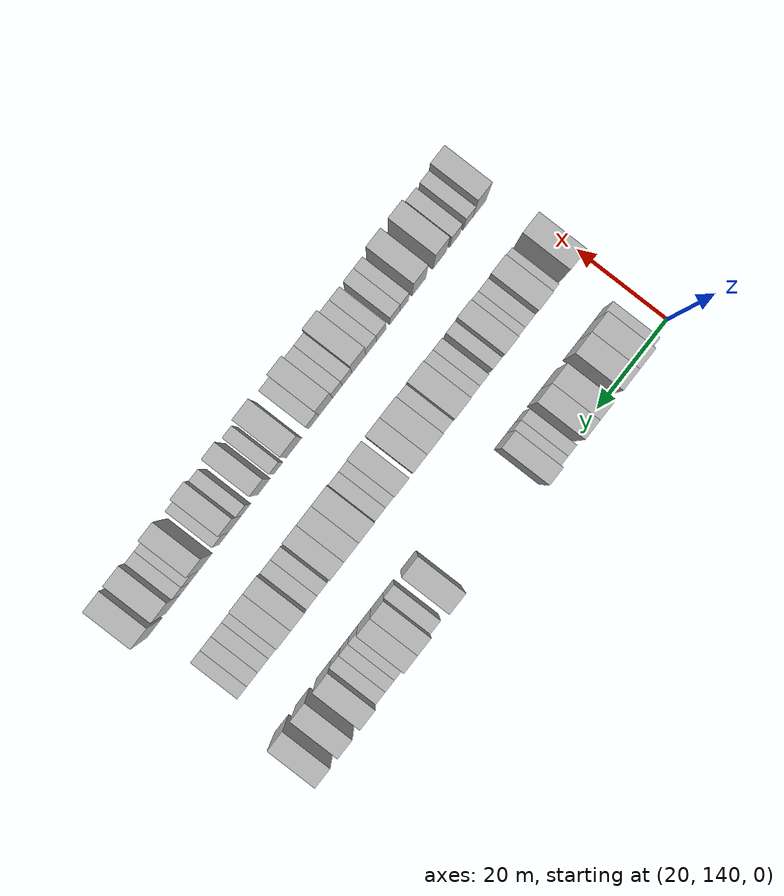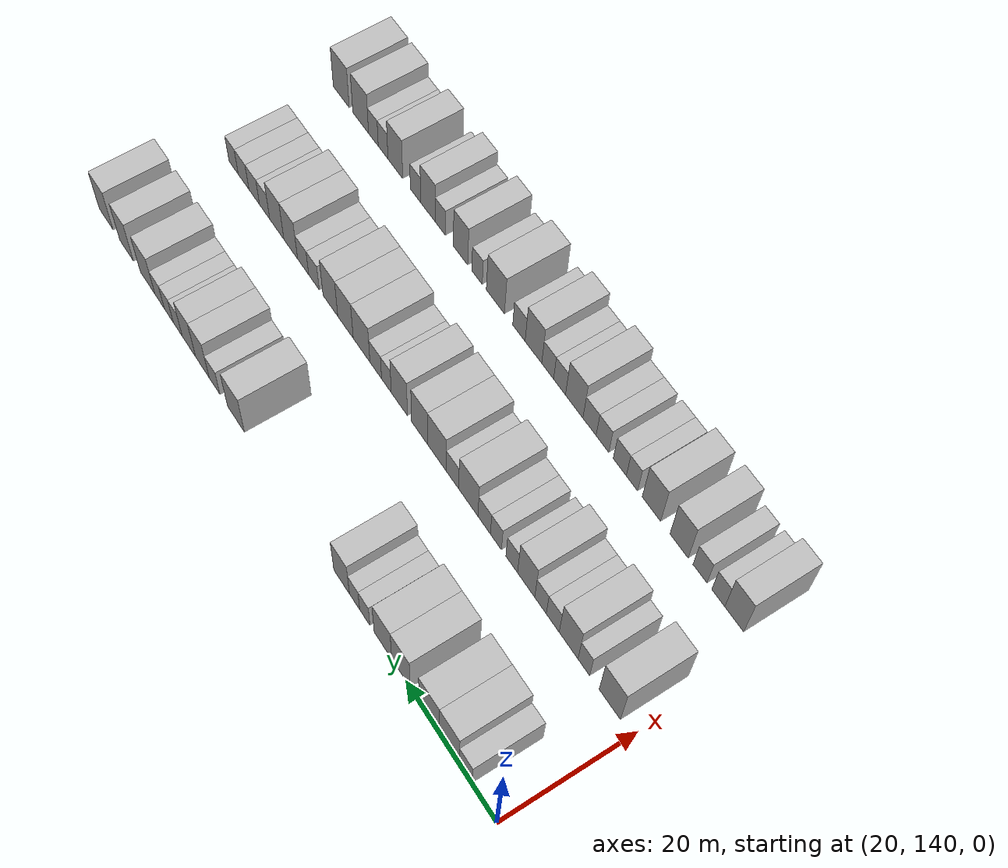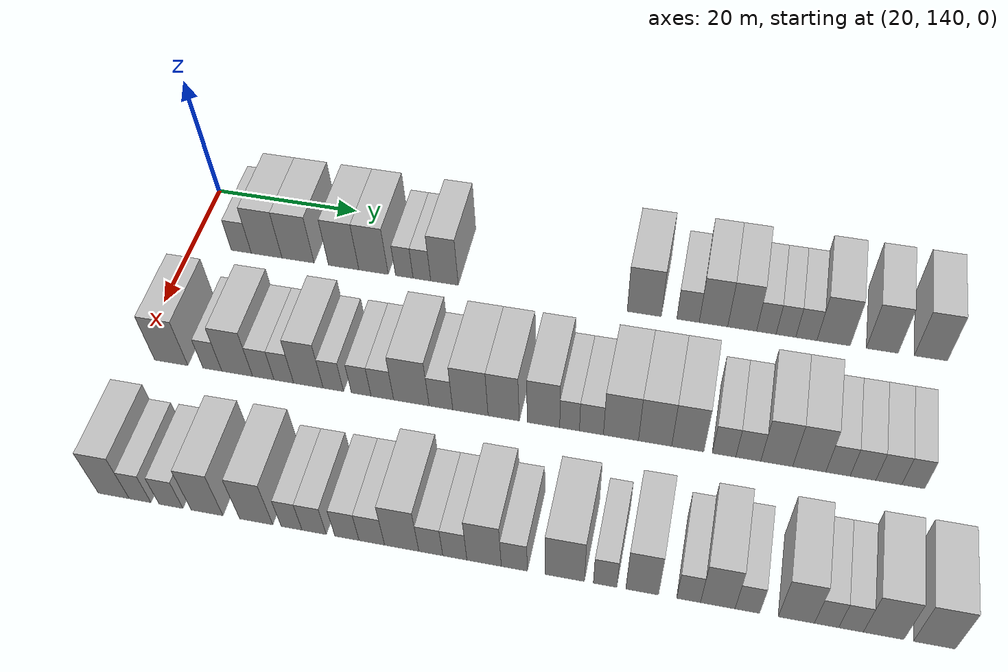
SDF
<sdf version="1.6">
 <world name="default">
  <model name="building_97">
   <static>1</static>
   <pose>25.0000 146.8412 0 0.000000 0.000000 0.000000</pose>
   <link name="link">
    <pose>0 0 3.00 0 0 0</pose>
    <collision name="collision"><geometry><box><size>10.0000 2.8325 6.0000</size></box></geometry></collision>
    <visual name="visual">
     <cast_shadows>0</cast_shadows>
     <geometry><box><size>10.0000 2.8325 6.0000</size></box></geometry>
     <material>
      <script>
       <uri>model://HANNAS_wall/materials/scripts</uri>
       <uri>model://HANNAS_wall/materials/textures</uri>
       <name>vrc/HANNAS_wall</name>
      </script>
     </material>
    </visual>
   </link>
  </model>
  <model name="building_98">
   <static>1</static>
   <pose>25.0000 150.4132 0 0.000000 0.000000 0.000000</pose>
   <link name="link">
    <pose>0 0 4.50 0 0 0</pose>
    <collision name="collision"><geometry><box><size>10.0000 4.3115 9.0000</size></box></geometry></collision>
    <visual name="visual">
     <cast_shadows>0</cast_shadows>
     <geometry><box><size>10.0000 4.3115 9.0000</size></box></geometry>
     <material>
      <script>
       <uri>model://HANNAS_wall/materials/scripts</uri>
       <uri>model://HANNAS_wall/materials/textures</uri>
       <name>vrc/HANNAS_wall</name>
      </script>
     </material>
    </visual>
   </link>
  </model>
  <model name="building_99">
   <static>1</static>
   <pose>25.0000 154.8145 0 0.000000 0.000000 0.000000</pose>
   <link name="link">
    <pose>0 0 4.50 0 0 0</pose>
    <collision name="collision"><geometry><box><size>10.0000 4.4910 9.0000</size></box></geometry></collision>
    <visual name="visual">
     <cast_shadows>0</cast_shadows>
     <geometry><box><size>10.0000 4.4910 9.0000</size></box></geometry>
     <material>
      <script>
       <uri>model://HANNAS_wall/materials/scripts</uri>
       <uri>model://HANNAS_wall/materials/textures</uri>
       <name>vrc/HANNAS_wall</name>
      </script>
     </material>
    </visual>
   </link>
  </model>
  <model name="building_100">
   <static>1</static>
   <pose>25.0000 161.1610 0 0.000000 0.000000 0.000000</pose>
   <link name="link">
    <pose>0 0 4.50 0 0 0</pose>
    <collision name="collision"><geometry><box><size>10.0000 4.2021 9.0000</size></box></geometry></collision>
    <visual name="visual">
     <cast_shadows>0</cast_shadows>
     <geometry><box><size>10.0000 4.2021 9.0000</size></box></geometry>
     <material>
      <script>
       <uri>model://HANNAS_wall/materials/scripts</uri>
       <uri>model://HANNAS_wall/materials/textures</uri>
       <name>vrc/HANNAS_wall</name>
      </script>
     </material>
    </visual>
   </link>
  </model>
  <model name="building_101">
   <static>1</static>
   <pose>25.0000 165.2833 0 0.000000 0.000000 0.000000</pose>
   <link name="link">
    <pose>0 0 4.50 0 0 0</pose>
    <collision name="collision"><geometry><box><size>10.0000 4.0424 9.0000</size></box></geometry></collision>
    <visual name="visual">
     <cast_shadows>0</cast_shadows>
     <geometry><box><size>10.0000 4.0424 9.0000</size></box></geometry>
     <material>
      <script>
       <uri>model://HANNAS_wall/materials/scripts</uri>
       <uri>model://HANNAS_wall/materials/textures</uri>
       <name>vrc/HANNAS_wall</name>
      </script>
     </material>
    </visual>
   </link>
  </model>
  <model name="building_102">
   <static>1</static>
   <pose>25.0000 169.5052 0 0.000000 0.000000 0.000000</pose>
   <link name="link">
    <pose>0 0 3.00 0 0 0</pose>
    <collision name="collision"><geometry><box><size>10.0000 2.4013 6.0000</size></box></geometry></collision>
    <visual name="visual">
     <cast_shadows>0</cast_shadows>
     <geometry><box><size>10.0000 2.4013 6.0000</size></box></geometry>
     <material>
      <script>
       <uri>model://HANNAS_wall/materials/scripts</uri>
       <uri>model://HANNAS_wall/materials/textures</uri>
       <name>vrc/HANNAS_wall</name>
      </script>
     </material>
    </visual>
   </link>
  </model>
  <model name="building_103">
   <static>1</static>
   <pose>25.0000 171.9071 0 0.000000 0.000000 0.000000</pose>
   <link name="link">
    <pose>0 0 3.00 0 0 0</pose>
    <collision name="collision"><geometry><box><size>10.0000 2.4025 6.0000</size></box></geometry></collision>
    <visual name="visual">
     <cast_shadows>0</cast_shadows>
     <geometry><box><size>10.0000 2.4025 6.0000</size></box></geometry>
     <material>
      <script>
       <uri>model://HANNAS_wall/materials/scripts</uri>
       <uri>model://HANNAS_wall/materials/textures</uri>
       <name>vrc/HANNAS_wall</name>
      </script>
     </material>
    </visual>
   </link>
  </model>
  <model name="building_104">
   <static>1</static>
   <pose>25.0000 174.9782 0 0.000000 0.000000 0.000000</pose>
   <link name="link">
    <pose>0 0 4.50 0 0 0</pose>
    <collision name="collision"><geometry><box><size>10.0000 3.7398 9.0000</size></box></geometry></collision>
    <visual name="visual">
     <cast_shadows>0</cast_shadows>
     <geometry><box><size>10.0000 3.7398 9.0000</size></box></geometry>
     <material>
      <script>
       <uri>model://HANNAS_wall/materials/scripts</uri>
       <uri>model://HANNAS_wall/materials/textures</uri>
       <name>vrc/HANNAS_wall</name>
      </script>
     </material>
    </visual>
   </link>
  </model>
  <model name="building_105">
   <static>1</static>
   <pose>25.0000 201.5291 0 0.000000 0.000000 0.000000</pose>
   <link name="link">
    <pose>0 0 4.50 0 0 0</pose>
    <collision name="collision"><geometry><box><size>10.0000 4.4540 9.0000</size></box></geometry></collision>
    <visual name="visual">
     <cast_shadows>0</cast_shadows>
     <geometry><box><size>10.0000 4.4540 9.0000</size></box></geometry>
     <material>
      <script>
       <uri>model://HANNAS_wall/materials/scripts</uri>
       <uri>model://HANNAS_wall/materials/textures</uri>
       <name>vrc/HANNAS_wall</name>
      </script>
     </material>
    </visual>
   </link>
  </model>
  <model name="building_106">
   <static>1</static>
   <pose>25.0000 207.2030 0 0.000000 0.000000 0.000000</pose>
   <link name="link">
    <pose>0 0 3.00 0 0 0</pose>
    <collision name="collision"><geometry><box><size>10.0000 2.8937 6.0000</size></box></geometry></collision>
    <visual name="visual">
     <cast_shadows>0</cast_shadows>
     <geometry><box><size>10.0000 2.8937 6.0000</size></box></geometry>
     <material>
      <script>
       <uri>model://HANNAS_wall/materials/scripts</uri>
       <uri>model://HANNAS_wall/materials/textures</uri>
       <name>vrc/HANNAS_wall</name>
      </script>
     </material>
    </visual>
   </link>
  </model>
  <model name="building_107">
   <static>1</static>
   <pose>25.0000 210.4806 0 0.000000 0.000000 0.000000</pose>
   <link name="link">
    <pose>0 0 4.50 0 0 0</pose>
    <collision name="collision"><geometry><box><size>10.0000 3.6615 9.0000</size></box></geometry></collision>
    <visual name="visual">
     <cast_shadows>0</cast_shadows>
     <geometry><box><size>10.0000 3.6615 9.0000</size></box></geometry>
     <material>
      <script>
       <uri>model://HANNAS_wall/materials/scripts</uri>
       <uri>model://HANNAS_wall/materials/textures</uri>
       <name>vrc/HANNAS_wall</name>
      </script>
     </material>
    </visual>
   </link>
  </model>
  <model name="building_108">
   <static>1</static>
   <pose>25.0000 214.1568 0 0.000000 0.000000 0.000000</pose>
   <link name="link">
    <pose>0 0 4.50 0 0 0</pose>
    <collision name="collision"><geometry><box><size>10.0000 3.6910 9.0000</size></box></geometry></collision>
    <visual name="visual">
     <cast_shadows>0</cast_shadows>
     <geometry><box><size>10.0000 3.6910 9.0000</size></box></geometry>
     <material>
      <script>
       <uri>model://HANNAS_wall/materials/scripts</uri>
       <uri>model://HANNAS_wall/materials/textures</uri>
       <name>vrc/HANNAS_wall</name>
      </script>
     </material>
    </visual>
   </link>
  </model>
  <model name="building_109">
   <static>1</static>
   <pose>25.0000 217.2474 0 0.000000 0.000000 0.000000</pose>
   <link name="link">
    <pose>0 0 3.00 0 0 0</pose>
    <collision name="collision"><geometry><box><size>10.0000 2.4903 6.0000</size></box></geometry></collision>
    <visual name="visual">
     <cast_shadows>0</cast_shadows>
     <geometry><box><size>10.0000 2.4903 6.0000</size></box></geometry>
     <material>
      <script>
       <uri>model://HANNAS_wall/materials/scripts</uri>
       <uri>model://HANNAS_wall/materials/textures</uri>
       <name>vrc/HANNAS_wall</name>
      </script>
     </material>
    </visual>
   </link>
  </model>
  <model name="building_110">
   <static>1</static>
   <pose>25.0000 219.7412 0 0.000000 0.000000 0.000000</pose>
   <link name="link">
    <pose>0 0 3.00 0 0 0</pose>
    <collision name="collision"><geometry><box><size>10.0000 2.4972 6.0000</size></box></geometry></collision>
    <visual name="visual">
     <cast_shadows>0</cast_shadows>
     <geometry><box><size>10.0000 2.4972 6.0000</size></box></geometry>
     <material>
      <script>
       <uri>model://HANNAS_wall/materials/scripts</uri>
       <uri>model://HANNAS_wall/materials/textures</uri>
       <name>vrc/HANNAS_wall</name>
      </script>
     </material>
    </visual>
   </link>
  </model>
  <model name="building_111">
   <static>1</static>
   <pose>25.0000 222.3231 0 0.000000 0.000000 0.000000</pose>
   <link name="link">
    <pose>0 0 3.00 0 0 0</pose>
    <collision name="collision"><geometry><box><size>10.0000 2.6667 6.0000</size></box></geometry></collision>
    <visual name="visual">
     <cast_shadows>0</cast_shadows>
     <geometry><box><size>10.0000 2.6667 6.0000</size></box></geometry>
     <material>
      <script>
       <uri>model://HANNAS_wall/materials/scripts</uri>
       <uri>model://HANNAS_wall/materials/textures</uri>
       <name>vrc/HANNAS_wall</name>
      </script>
     </material>
    </visual>
   </link>
  </model>
  <model name="building_112">
   <static>1</static>
   <pose>25.0000 225.7544 0 0.000000 0.000000 0.000000</pose>
   <link name="link">
    <pose>0 0 4.50 0 0 0</pose>
    <collision name="collision"><geometry><box><size>10.0000 4.1959 9.0000</size></box></geometry></collision>
    <visual name="visual">
     <cast_shadows>0</cast_shadows>
     <geometry><box><size>10.0000 4.1959 9.0000</size></box></geometry>
     <material>
      <script>
       <uri>model://HANNAS_wall/materials/scripts</uri>
       <uri>model://HANNAS_wall/materials/textures</uri>
       <name>vrc/HANNAS_wall</name>
      </script>
     </material>
    </visual>
   </link>
  </model>
  <model name="building_113">
   <static>1</static>
   <pose>25.0000 231.8361 0 0.000000 0.000000 0.000000</pose>
   <link name="link">
    <pose>0 0 4.50 0 0 0</pose>
    <collision name="collision"><geometry><box><size>10.0000 3.9677 9.0000</size></box></geometry></collision>
    <visual name="visual">
     <cast_shadows>0</cast_shadows>
     <geometry><box><size>10.0000 3.9677 9.0000</size></box></geometry>
     <material>
      <script>
       <uri>model://HANNAS_wall/materials/scripts</uri>
       <uri>model://HANNAS_wall/materials/textures</uri>
       <name>vrc/HANNAS_wall</name>
      </script>
     </material>
    </visual>
   </link>
  </model>
  <model name="building_114">
   <static>1</static>
   <pose>25.0000 237.8687 0 0.000000 0.000000 0.000000</pose>
   <link name="link">
    <pose>0 0 4.50 0 0 0</pose>
    <collision name="collision"><geometry><box><size>10.0000 4.0975 9.0000</size></box></geometry></collision>
    <visual name="visual">
     <cast_shadows>0</cast_shadows>
     <geometry><box><size>10.0000 4.0975 9.0000</size></box></geometry>
     <material>
      <script>
       <uri>model://HANNAS_wall/materials/scripts</uri>
       <uri>model://HANNAS_wall/materials/textures</uri>
       <name>vrc/HANNAS_wall</name>
      </script>
     </material>
    </visual>
   </link>
  </model>
  <model name="building_207">
   <static>1</static>
   <pose>44.0000 144.5111 0 0.000000 0.000000 0.000000</pose>
   <link name="link">
    <pose>0 0 4.50 0 0 0</pose>
    <collision name="collision"><geometry><box><size>10.0000 4.3973 9.0000</size></box></geometry></collision>
    <visual name="visual">
     <cast_shadows>0</cast_shadows>
     <geometry><box><size>10.0000 4.3973 9.0000</size></box></geometry>
     <material>
      <script>
       <uri>model://HANNAS_wall/materials/scripts</uri>
       <uri>model://HANNAS_wall/materials/textures</uri>
       <name>vrc/HANNAS_wall</name>
      </script>
     </material>
    </visual>
   </link>
  </model>
  <model name="building_208">
   <static>1</static>
   <pose>44.0000 149.9507 0 0.000000 0.000000 0.000000</pose>
   <link name="link">
    <pose>0 0 3.00 0 0 0</pose>
    <collision name="collision"><geometry><box><size>10.0000 2.4818 6.0000</size></box></geometry></collision>
    <visual name="visual">
     <cast_shadows>0</cast_shadows>
     <geometry><box><size>10.0000 2.4818 6.0000</size></box></geometry>
     <material>
      <script>
       <uri>model://HANNAS_wall/materials/scripts</uri>
       <uri>model://HANNAS_wall/materials/textures</uri>
       <name>vrc/HANNAS_wall</name>
      </script>
     </material>
    </visual>
   </link>
  </model>
  <model name="building_209">
   <static>1</static>
   <pose>44.0000 153.2007 0 0.000000 0.000000 0.000000</pose>
   <link name="link">
    <pose>0 0 4.50 0 0 0</pose>
    <collision name="collision"><geometry><box><size>10.0000 4.0182 9.0000</size></box></geometry></collision>
    <visual name="visual">
     <cast_shadows>0</cast_shadows>
     <geometry><box><size>10.0000 4.0182 9.0000</size></box></geometry>
     <material>
      <script>
       <uri>model://HANNAS_wall/materials/scripts</uri>
       <uri>model://HANNAS_wall/materials/textures</uri>
       <name>vrc/HANNAS_wall</name>
      </script>
     </material>
    </visual>
   </link>
  </model>
  <model name="building_210">
   <static>1</static>
   <pose>44.0000 156.6071 0 0.000000 0.000000 0.000000</pose>
   <link name="link">
    <pose>0 0 3.00 0 0 0</pose>
    <collision name="collision"><geometry><box><size>10.0000 2.7946 6.0000</size></box></geometry></collision>
    <visual name="visual">
     <cast_shadows>0</cast_shadows>
     <geometry><box><size>10.0000 2.7946 6.0000</size></box></geometry>
     <material>
      <script>
       <uri>model://HANNAS_wall/materials/scripts</uri>
       <uri>model://HANNAS_wall/materials/textures</uri>
       <name>vrc/HANNAS_wall</name>
      </script>
     </material>
    </visual>
   </link>
  </model>
  <model name="building_211">
   <static>1</static>
   <pose>44.0000 159.2744 0 0.000000 0.000000 0.000000</pose>
   <link name="link">
    <pose>0 0 3.00 0 0 0</pose>
    <collision name="collision"><geometry><box><size>10.0000 2.5400 6.0000</size></box></geometry></collision>
    <visual name="visual">
     <cast_shadows>0</cast_shadows>
     <geometry><box><size>10.0000 2.5400 6.0000</size></box></geometry>
     <material>
      <script>
       <uri>model://HANNAS_wall/materials/scripts</uri>
       <uri>model://HANNAS_wall/materials/textures</uri>
       <name>vrc/HANNAS_wall</name>
      </script>
     </material>
    </visual>
   </link>
  </model>
  <model name="building_212">
   <static>1</static>
   <pose>44.0000 162.4457 0 0.000000 0.000000 0.000000</pose>
   <link name="link">
    <pose>0 0 4.50 0 0 0</pose>
    <collision name="collision"><geometry><box><size>10.0000 3.8026 9.0000</size></box></geometry></collision>
    <visual name="visual">
     <cast_shadows>0</cast_shadows>
     <geometry><box><size>10.0000 3.8026 9.0000</size></box></geometry>
     <material>
      <script>
       <uri>model://HANNAS_wall/materials/scripts</uri>
       <uri>model://HANNAS_wall/materials/textures</uri>
       <name>vrc/HANNAS_wall</name>
      </script>
     </material>
    </visual>
   </link>
  </model>
  <model name="building_213">
   <static>1</static>
   <pose>44.0000 165.6534 0 0.000000 0.000000 0.000000</pose>
   <link name="link">
    <pose>0 0 3.00 0 0 0</pose>
    <collision name="collision"><geometry><box><size>10.0000 2.6128 6.0000</size></box></geometry></collision>
    <visual name="visual">
     <cast_shadows>0</cast_shadows>
     <geometry><box><size>10.0000 2.6128 6.0000</size></box></geometry>
     <material>
      <script>
       <uri>model://HANNAS_wall/materials/scripts</uri>
       <uri>model://HANNAS_wall/materials/textures</uri>
       <name>vrc/HANNAS_wall</name>
      </script>
     </material>
    </visual>
   </link>
  </model>
  <model name="building_214">
   <static>1</static>
   <pose>44.0000 169.2153 0 0.000000 0.000000 0.000000</pose>
   <link name="link">
    <pose>0 0 3.00 0 0 0</pose>
    <collision name="collision"><geometry><box><size>10.0000 2.5110 6.0000</size></box></geometry></collision>
    <visual name="visual">
     <cast_shadows>0</cast_shadows>
     <geometry><box><size>10.0000 2.5110 6.0000</size></box></geometry>
     <material>
      <script>
       <uri>model://HANNAS_wall/materials/scripts</uri>
       <uri>model://HANNAS_wall/materials/textures</uri>
       <name>vrc/HANNAS_wall</name>
      </script>
     </material>
    </visual>
   </link>
  </model>
  <model name="building_215">
   <static>1</static>
   <pose>44.0000 171.9040 0 0.000000 0.000000 0.000000</pose>
   <link name="link">
    <pose>0 0 3.00 0 0 0</pose>
    <collision name="collision"><geometry><box><size>10.0000 2.8663 6.0000</size></box></geometry></collision>
    <visual name="visual">
     <cast_shadows>0</cast_shadows>
     <geometry><box><size>10.0000 2.8663 6.0000</size></box></geometry>
     <material>
      <script>
       <uri>model://HANNAS_wall/materials/scripts</uri>
       <uri>model://HANNAS_wall/materials/textures</uri>
       <name>vrc/HANNAS_wall</name>
      </script>
     </material>
    </visual>
   </link>
  </model>
  <model name="building_216">
   <static>1</static>
   <pose>44.0000 175.5779 0 0.000000 0.000000 0.000000</pose>
   <link name="link">
    <pose>0 0 4.50 0 0 0</pose>
    <collision name="collision"><geometry><box><size>10.0000 4.4815 9.0000</size></box></geometry></collision>
    <visual name="visual">
     <cast_shadows>0</cast_shadows>
     <geometry><box><size>10.0000 4.4815 9.0000</size></box></geometry>
     <material>
      <script>
       <uri>model://HANNAS_wall/materials/scripts</uri>
       <uri>model://HANNAS_wall/materials/textures</uri>
       <name>vrc/HANNAS_wall</name>
      </script>
     </material>
    </visual>
   </link>
  </model>
  <model name="building_217">
   <static>1</static>
   <pose>44.0000 179.3002 0 0.000000 0.000000 0.000000</pose>
   <link name="link">
    <pose>0 0 3.00 0 0 0</pose>
    <collision name="collision"><geometry><box><size>10.0000 2.9632 6.0000</size></box></geometry></collision>
    <visual name="visual">
     <cast_shadows>0</cast_shadows>
     <geometry><box><size>10.0000 2.9632 6.0000</size></box></geometry>
     <material>
      <script>
       <uri>model://HANNAS_wall/materials/scripts</uri>
       <uri>model://HANNAS_wall/materials/textures</uri>
       <name>vrc/HANNAS_wall</name>
      </script>
     </material>
    </visual>
   </link>
  </model>
  <model name="building_218">
   <static>1</static>
   <pose>44.0000 182.9810 0 0.000000 0.000000 0.000000</pose>
   <link name="link">
    <pose>0 0 4.50 0 0 0</pose>
    <collision name="collision"><geometry><box><size>10.0000 4.3983 9.0000</size></box></geometry></collision>
    <visual name="visual">
     <cast_shadows>0</cast_shadows>
     <geometry><box><size>10.0000 4.3983 9.0000</size></box></geometry>
     <material>
      <script>
       <uri>model://HANNAS_wall/materials/scripts</uri>
       <uri>model://HANNAS_wall/materials/textures</uri>
       <name>vrc/HANNAS_wall</name>
      </script>
     </material>
    </visual>
   </link>
  </model>
  <model name="building_219">
   <static>1</static>
   <pose>44.0000 187.1157 0 0.000000 0.000000 0.000000</pose>
   <link name="link">
    <pose>0 0 4.50 0 0 0</pose>
    <collision name="collision"><geometry><box><size>10.0000 3.8711 9.0000</size></box></geometry></collision>
    <visual name="visual">
     <cast_shadows>0</cast_shadows>
     <geometry><box><size>10.0000 3.8711 9.0000</size></box></geometry>
     <material>
      <script>
       <uri>model://HANNAS_wall/materials/scripts</uri>
       <uri>model://HANNAS_wall/materials/textures</uri>
       <name>vrc/HANNAS_wall</name>
      </script>
     </material>
    </visual>
   </link>
  </model>
  <model name="building_220">
   <static>1</static>
   <pose>44.0000 192.0382 0 0.000000 0.000000 0.000000</pose>
   <link name="link">
    <pose>0 0 4.50 0 0 0</pose>
    <collision name="collision"><geometry><box><size>10.0000 3.9739 9.0000</size></box></geometry></collision>
    <visual name="visual">
     <cast_shadows>0</cast_shadows>
     <geometry><box><size>10.0000 3.9739 9.0000</size></box></geometry>
     <material>
      <script>
       <uri>model://HANNAS_wall/materials/scripts</uri>
       <uri>model://HANNAS_wall/materials/textures</uri>
       <name>vrc/HANNAS_wall</name>
      </script>
     </material>
    </visual>
   </link>
  </model>
  <model name="building_221">
   <static>1</static>
   <pose>44.0000 195.2307 0 0.000000 0.000000 0.000000</pose>
   <link name="link">
    <pose>0 0 3.00 0 0 0</pose>
    <collision name="collision"><geometry><box><size>10.0000 2.4112 6.0000</size></box></geometry></collision>
    <visual name="visual">
     <cast_shadows>0</cast_shadows>
     <geometry><box><size>10.0000 2.4112 6.0000</size></box></geometry>
     <material>
      <script>
       <uri>model://HANNAS_wall/materials/scripts</uri>
       <uri>model://HANNAS_wall/materials/textures</uri>
       <name>vrc/HANNAS_wall</name>
      </script>
     </material>
    </visual>
   </link>
  </model>
  <model name="building_222">
   <static>1</static>
   <pose>44.0000 197.8939 0 0.000000 0.000000 0.000000</pose>
   <link name="link">
    <pose>0 0 3.00 0 0 0</pose>
    <collision name="collision"><geometry><box><size>10.0000 2.9153 6.0000</size></box></geometry></collision>
    <visual name="visual">
     <cast_shadows>0</cast_shadows>
     <geometry><box><size>10.0000 2.9153 6.0000</size></box></geometry>
     <material>
      <script>
       <uri>model://HANNAS_wall/materials/scripts</uri>
       <uri>model://HANNAS_wall/materials/textures</uri>
       <name>vrc/HANNAS_wall</name>
      </script>
     </material>
    </visual>
   </link>
  </model>
  <model name="building_223">
   <static>1</static>
   <pose>44.0000 201.4726 0 0.000000 0.000000 0.000000</pose>
   <link name="link">
    <pose>0 0 4.50 0 0 0</pose>
    <collision name="collision"><geometry><box><size>10.0000 4.2420 9.0000</size></box></geometry></collision>
    <visual name="visual">
     <cast_shadows>0</cast_shadows>
     <geometry><box><size>10.0000 4.2420 9.0000</size></box></geometry>
     <material>
      <script>
       <uri>model://HANNAS_wall/materials/scripts</uri>
       <uri>model://HANNAS_wall/materials/textures</uri>
       <name>vrc/HANNAS_wall</name>
      </script>
     </material>
    </visual>
   </link>
  </model>
  <model name="building_224">
   <static>1</static>
   <pose>44.0000 205.5902 0 0.000000 0.000000 0.000000</pose>
   <link name="link">
    <pose>0 0 4.50 0 0 0</pose>
    <collision name="collision"><geometry><box><size>10.0000 3.9932 9.0000</size></box></geometry></collision>
    <visual name="visual">
     <cast_shadows>0</cast_shadows>
     <geometry><box><size>10.0000 3.9932 9.0000</size></box></geometry>
     <material>
      <script>
       <uri>model://HANNAS_wall/materials/scripts</uri>
       <uri>model://HANNAS_wall/materials/textures</uri>
       <name>vrc/HANNAS_wall</name>
      </script>
     </material>
    </visual>
   </link>
  </model>
  <model name="building_225">
   <static>1</static>
   <pose>44.0000 209.5104 0 0.000000 0.000000 0.000000</pose>
   <link name="link">
    <pose>0 0 4.50 0 0 0</pose>
    <collision name="collision"><geometry><box><size>10.0000 3.8473 9.0000</size></box></geometry></collision>
    <visual name="visual">
     <cast_shadows>0</cast_shadows>
     <geometry><box><size>10.0000 3.8473 9.0000</size></box></geometry>
     <material>
      <script>
       <uri>model://HANNAS_wall/materials/scripts</uri>
       <uri>model://HANNAS_wall/materials/textures</uri>
       <name>vrc/HANNAS_wall</name>
      </script>
     </material>
    </visual>
   </link>
  </model>
  <model name="building_226">
   <static>1</static>
   <pose>44.0000 213.8315 0 0.000000 0.000000 0.000000</pose>
   <link name="link">
    <pose>0 0 3.00 0 0 0</pose>
    <collision name="collision"><geometry><box><size>10.0000 2.7948 6.0000</size></box></geometry></collision>
    <visual name="visual">
     <cast_shadows>0</cast_shadows>
     <geometry><box><size>10.0000 2.7948 6.0000</size></box></geometry>
     <material>
      <script>
       <uri>model://HANNAS_wall/materials/scripts</uri>
       <uri>model://HANNAS_wall/materials/textures</uri>
       <name>vrc/HANNAS_wall</name>
      </script>
     </material>
    </visual>
   </link>
  </model>
  <model name="building_227">
   <static>1</static>
   <pose>44.0000 216.7019 0 0.000000 0.000000 0.000000</pose>
   <link name="link">
    <pose>0 0 3.00 0 0 0</pose>
    <collision name="collision"><geometry><box><size>10.0000 2.9460 6.0000</size></box></geometry></collision>
    <visual name="visual">
     <cast_shadows>0</cast_shadows>
     <geometry><box><size>10.0000 2.9460 6.0000</size></box></geometry>
     <material>
      <script>
       <uri>model://HANNAS_wall/materials/scripts</uri>
       <uri>model://HANNAS_wall/materials/textures</uri>
       <name>vrc/HANNAS_wall</name>
      </script>
     </material>
    </visual>
   </link>
  </model>
  <model name="building_228">
   <static>1</static>
   <pose>44.0000 220.0485 0 0.000000 0.000000 0.000000</pose>
   <link name="link">
    <pose>0 0 4.50 0 0 0</pose>
    <collision name="collision"><geometry><box><size>10.0000 3.7472 9.0000</size></box></geometry></collision>
    <visual name="visual">
     <cast_shadows>0</cast_shadows>
     <geometry><box><size>10.0000 3.7472 9.0000</size></box></geometry>
     <material>
      <script>
       <uri>model://HANNAS_wall/materials/scripts</uri>
       <uri>model://HANNAS_wall/materials/textures</uri>
       <name>vrc/HANNAS_wall</name>
      </script>
     </material>
    </visual>
   </link>
  </model>
  <model name="building_229">
   <static>1</static>
   <pose>44.0000 223.8509 0 0.000000 0.000000 0.000000</pose>
   <link name="link">
    <pose>0 0 4.50 0 0 0</pose>
    <collision name="collision"><geometry><box><size>10.0000 3.8575 9.0000</size></box></geometry></collision>
    <visual name="visual">
     <cast_shadows>0</cast_shadows>
     <geometry><box><size>10.0000 3.8575 9.0000</size></box></geometry>
     <material>
      <script>
       <uri>model://HANNAS_wall/materials/scripts</uri>
       <uri>model://HANNAS_wall/materials/textures</uri>
       <name>vrc/HANNAS_wall</name>
      </script>
     </material>
    </visual>
   </link>
  </model>
  <model name="building_230">
   <static>1</static>
   <pose>44.0000 227.1933 0 0.000000 0.000000 0.000000</pose>
   <link name="link">
    <pose>0 0 3.00 0 0 0</pose>
    <collision name="collision"><geometry><box><size>10.0000 2.8275 6.0000</size></box></geometry></collision>
    <visual name="visual">
     <cast_shadows>0</cast_shadows>
     <geometry><box><size>10.0000 2.8275 6.0000</size></box></geometry>
     <material>
      <script>
       <uri>model://HANNAS_wall/materials/scripts</uri>
       <uri>model://HANNAS_wall/materials/textures</uri>
       <name>vrc/HANNAS_wall</name>
      </script>
     </material>
    </visual>
   </link>
  </model>
  <model name="building_231">
   <static>1</static>
   <pose>44.0000 230.0925 0 0.000000 0.000000 0.000000</pose>
   <link name="link">
    <pose>0 0 3.00 0 0 0</pose>
    <collision name="collision"><geometry><box><size>10.0000 2.9708 6.0000</size></box></geometry></collision>
    <visual name="visual">
     <cast_shadows>0</cast_shadows>
     <geometry><box><size>10.0000 2.9708 6.0000</size></box></geometry>
     <material>
      <script>
       <uri>model://HANNAS_wall/materials/scripts</uri>
       <uri>model://HANNAS_wall/materials/textures</uri>
       <name>vrc/HANNAS_wall</name>
      </script>
     </material>
    </visual>
   </link>
  </model>
  <model name="building_232">
   <static>1</static>
   <pose>44.0000 233.0729 0 0.000000 0.000000 0.000000</pose>
   <link name="link">
    <pose>0 0 3.00 0 0 0</pose>
    <collision name="collision"><geometry><box><size>10.0000 2.9900 6.0000</size></box></geometry></collision>
    <visual name="visual">
     <cast_shadows>0</cast_shadows>
     <geometry><box><size>10.0000 2.9900 6.0000</size></box></geometry>
     <material>
      <script>
       <uri>model://HANNAS_wall/materials/scripts</uri>
       <uri>model://HANNAS_wall/materials/textures</uri>
       <name>vrc/HANNAS_wall</name>
      </script>
     </material>
    </visual>
   </link>
  </model>
  <model name="building_233">
   <static>1</static>
   <pose>44.0000 235.8812 0 0.000000 0.000000 0.000000</pose>
   <link name="link">
    <pose>0 0 3.00 0 0 0</pose>
    <collision name="collision"><geometry><box><size>10.0000 2.6266 6.0000</size></box></geometry></collision>
    <visual name="visual">
     <cast_shadows>0</cast_shadows>
     <geometry><box><size>10.0000 2.6266 6.0000</size></box></geometry>
     <material>
      <script>
       <uri>model://HANNAS_wall/materials/scripts</uri>
       <uri>model://HANNAS_wall/materials/textures</uri>
       <name>vrc/HANNAS_wall</name>
      </script>
     </material>
    </visual>
   </link>
  </model>
  <model name="building_326">
   <static>1</static>
   <pose>63.0000 145.1109 0 0.000000 0.000000 0.000000</pose>
   <link name="link">
    <pose>0 0 4.50 0 0 0</pose>
    <collision name="collision"><geometry><box><size>10.0000 3.8320 9.0000</size></box></geometry></collision>
    <visual name="visual">
     <cast_shadows>0</cast_shadows>
     <geometry><box><size>10.0000 3.8320 9.0000</size></box></geometry>
     <material>
      <script>
       <uri>model://HANNAS_wall/materials/scripts</uri>
       <uri>model://HANNAS_wall/materials/textures</uri>
       <name>vrc/HANNAS_wall</name>
      </script>
     </material>
    </visual>
   </link>
  </model>
  <model name="building_327">
   <static>1</static>
   <pose>63.0000 148.3524 0 0.000000 0.000000 0.000000</pose>
   <link name="link">
    <pose>0 0 3.00 0 0 0</pose>
    <collision name="collision"><geometry><box><size>10.0000 2.6510 6.0000</size></box></geometry></collision>
    <visual name="visual">
     <cast_shadows>0</cast_shadows>
     <geometry><box><size>10.0000 2.6510 6.0000</size></box></geometry>
     <material>
      <script>
       <uri>model://HANNAS_wall/materials/scripts</uri>
       <uri>model://HANNAS_wall/materials/textures</uri>
       <name>vrc/HANNAS_wall</name>
      </script>
     </material>
    </visual>
   </link>
  </model>
  <model name="building_328">
   <static>1</static>
   <pose>63.0000 152.1291 0 0.000000 0.000000 0.000000</pose>
   <link name="link">
    <pose>0 0 3.00 0 0 0</pose>
    <collision name="collision"><geometry><box><size>10.0000 2.9025 6.0000</size></box></geometry></collision>
    <visual name="visual">
     <cast_shadows>0</cast_shadows>
     <geometry><box><size>10.0000 2.9025 6.0000</size></box></geometry>
     <material>
      <script>
       <uri>model://HANNAS_wall/materials/scripts</uri>
       <uri>model://HANNAS_wall/materials/textures</uri>
       <name>vrc/HANNAS_wall</name>
      </script>
     </material>
    </visual>
   </link>
  </model>
  <model name="building_329">
   <static>1</static>
   <pose>63.0000 156.5022 0 0.000000 0.000000 0.000000</pose>
   <link name="link">
    <pose>0 0 4.50 0 0 0</pose>
    <collision name="collision"><geometry><box><size>10.0000 3.8437 9.0000</size></box></geometry></collision>
    <visual name="visual">
     <cast_shadows>0</cast_shadows>
     <geometry><box><size>10.0000 3.8437 9.0000</size></box></geometry>
     <material>
      <script>
       <uri>model://HANNAS_wall/materials/scripts</uri>
       <uri>model://HANNAS_wall/materials/textures</uri>
       <name>vrc/HANNAS_wall</name>
      </script>
     </material>
    </visual>
   </link>
  </model>
  <model name="building_330">
   <static>1</static>
   <pose>63.0000 162.4082 0 0.000000 0.000000 0.000000</pose>
   <link name="link">
    <pose>0 0 4.50 0 0 0</pose>
    <collision name="collision"><geometry><box><size>10.0000 3.9683 9.0000</size></box></geometry></collision>
    <visual name="visual">
     <cast_shadows>0</cast_shadows>
     <geometry><box><size>10.0000 3.9683 9.0000</size></box></geometry>
     <material>
      <script>
       <uri>model://HANNAS_wall/materials/scripts</uri>
       <uri>model://HANNAS_wall/materials/textures</uri>
       <name>vrc/HANNAS_wall</name>
      </script>
     </material>
    </visual>
   </link>
  </model>
  <model name="building_331">
   <static>1</static>
   <pose>63.0000 166.6334 0 0.000000 0.000000 0.000000</pose>
   <link name="link">
    <pose>0 0 3.00 0 0 0</pose>
    <collision name="collision"><geometry><box><size>10.0000 2.4821 6.0000</size></box></geometry></collision>
    <visual name="visual">
     <cast_shadows>0</cast_shadows>
     <geometry><box><size>10.0000 2.4821 6.0000</size></box></geometry>
     <material>
      <script>
       <uri>model://HANNAS_wall/materials/scripts</uri>
       <uri>model://HANNAS_wall/materials/textures</uri>
       <name>vrc/HANNAS_wall</name>
      </script>
     </material>
    </visual>
   </link>
  </model>
  <model name="building_332">
   <static>1</static>
   <pose>63.0000 169.3116 0 0.000000 0.000000 0.000000</pose>
   <link name="link">
    <pose>0 0 3.00 0 0 0</pose>
    <collision name="collision"><geometry><box><size>10.0000 2.8743 6.0000</size></box></geometry></collision>
    <visual name="visual">
     <cast_shadows>0</cast_shadows>
     <geometry><box><size>10.0000 2.8743 6.0000</size></box></geometry>
     <material>
      <script>
       <uri>model://HANNAS_wall/materials/scripts</uri>
       <uri>model://HANNAS_wall/materials/textures</uri>
       <name>vrc/HANNAS_wall</name>
      </script>
     </material>
    </visual>
   </link>
  </model>
  <model name="building_333">
   <static>1</static>
   <pose>63.0000 173.1692 0 0.000000 0.000000 0.000000</pose>
   <link name="link">
    <pose>0 0 3.00 0 0 0</pose>
    <collision name="collision"><geometry><box><size>10.0000 2.8409 6.0000</size></box></geometry></collision>
    <visual name="visual">
     <cast_shadows>0</cast_shadows>
     <geometry><box><size>10.0000 2.8409 6.0000</size></box></geometry>
     <material>
      <script>
       <uri>model://HANNAS_wall/materials/scripts</uri>
       <uri>model://HANNAS_wall/materials/textures</uri>
       <name>vrc/HANNAS_wall</name>
      </script>
     </material>
    </visual>
   </link>
  </model>
  <model name="building_334">
   <static>1</static>
   <pose>63.0000 176.0790 0 0.000000 0.000000 0.000000</pose>
   <link name="link">
    <pose>0 0 3.00 0 0 0</pose>
    <collision name="collision"><geometry><box><size>10.0000 2.9787 6.0000</size></box></geometry></collision>
    <visual name="visual">
     <cast_shadows>0</cast_shadows>
     <geometry><box><size>10.0000 2.9787 6.0000</size></box></geometry>
     <material>
      <script>
       <uri>model://HANNAS_wall/materials/scripts</uri>
       <uri>model://HANNAS_wall/materials/textures</uri>
       <name>vrc/HANNAS_wall</name>
      </script>
     </material>
    </visual>
   </link>
  </model>
  <model name="building_335">
   <static>1</static>
   <pose>63.0000 179.5606 0 0.000000 0.000000 0.000000</pose>
   <link name="link">
    <pose>0 0 4.50 0 0 0</pose>
    <collision name="collision"><geometry><box><size>10.0000 3.9846 9.0000</size></box></geometry></collision>
    <visual name="visual">
     <cast_shadows>0</cast_shadows>
     <geometry><box><size>10.0000 3.9846 9.0000</size></box></geometry>
     <material>
      <script>
       <uri>model://HANNAS_wall/materials/scripts</uri>
       <uri>model://HANNAS_wall/materials/textures</uri>
       <name>vrc/HANNAS_wall</name>
      </script>
     </material>
    </visual>
   </link>
  </model>
  <model name="building_336">
   <static>1</static>
   <pose>63.0000 182.9313 0 0.000000 0.000000 0.000000</pose>
   <link name="link">
    <pose>0 0 3.00 0 0 0</pose>
    <collision name="collision"><geometry><box><size>10.0000 2.7568 6.0000</size></box></geometry></collision>
    <visual name="visual">
     <cast_shadows>0</cast_shadows>
     <geometry><box><size>10.0000 2.7568 6.0000</size></box></geometry>
     <material>
      <script>
       <uri>model://HANNAS_wall/materials/scripts</uri>
       <uri>model://HANNAS_wall/materials/textures</uri>
       <name>vrc/HANNAS_wall</name>
      </script>
     </material>
    </visual>
   </link>
  </model>
  <model name="building_337">
   <static>1</static>
   <pose>63.0000 185.6976 0 0.000000 0.000000 0.000000</pose>
   <link name="link">
    <pose>0 0 3.00 0 0 0</pose>
    <collision name="collision"><geometry><box><size>10.0000 2.7757 6.0000</size></box></geometry></collision>
    <visual name="visual">
     <cast_shadows>0</cast_shadows>
     <geometry><box><size>10.0000 2.7757 6.0000</size></box></geometry>
     <material>
      <script>
       <uri>model://HANNAS_wall/materials/scripts</uri>
       <uri>model://HANNAS_wall/materials/textures</uri>
       <name>vrc/HANNAS_wall</name>
      </script>
     </material>
    </visual>
   </link>
  </model>
  <model name="building_338">
   <static>1</static>
   <pose>63.0000 189.0491 0 0.000000 0.000000 0.000000</pose>
   <link name="link">
    <pose>0 0 4.50 0 0 0</pose>
    <collision name="collision"><geometry><box><size>10.0000 3.9274 9.0000</size></box></geometry></collision>
    <visual name="visual">
     <cast_shadows>0</cast_shadows>
     <geometry><box><size>10.0000 3.9274 9.0000</size></box></geometry>
     <material>
      <script>
       <uri>model://HANNAS_wall/materials/scripts</uri>
       <uri>model://HANNAS_wall/materials/textures</uri>
       <name>vrc/HANNAS_wall</name>
      </script>
     </material>
    </visual>
   </link>
  </model>
  <model name="building_339">
   <static>1</static>
   <pose>63.0000 192.4932 0 0.000000 0.000000 0.000000</pose>
   <link name="link">
    <pose>0 0 3.00 0 0 0</pose>
    <collision name="collision"><geometry><box><size>10.0000 2.9607 6.0000</size></box></geometry></collision>
    <visual name="visual">
     <cast_shadows>0</cast_shadows>
     <geometry><box><size>10.0000 2.9607 6.0000</size></box></geometry>
     <material>
      <script>
       <uri>model://HANNAS_wall/materials/scripts</uri>
       <uri>model://HANNAS_wall/materials/textures</uri>
       <name>vrc/HANNAS_wall</name>
      </script>
     </material>
    </visual>
   </link>
  </model>
  <model name="building_340">
   <static>1</static>
   <pose>63.0000 198.1843 0 0.000000 0.000000 0.000000</pose>
   <link name="link">
    <pose>0 0 4.50 0 0 0</pose>
    <collision name="collision"><geometry><box><size>10.0000 4.4216 9.0000</size></box></geometry></collision>
    <visual name="visual">
     <cast_shadows>0</cast_shadows>
     <geometry><box><size>10.0000 4.4216 9.0000</size></box></geometry>
     <material>
      <script>
       <uri>model://HANNAS_wall/materials/scripts</uri>
       <uri>model://HANNAS_wall/materials/textures</uri>
       <name>vrc/HANNAS_wall</name>
      </script>
     </material>
    </visual>
   </link>
  </model>
  <model name="building_341">
   <static>1</static>
   <pose>63.0000 202.7008 0 0.000000 0.000000 0.000000</pose>
   <link name="link">
    <pose>0 0 3.00 0 0 0</pose>
    <collision name="collision"><geometry><box><size>10.0000 2.6115 6.0000</size></box></geometry></collision>
    <visual name="visual">
     <cast_shadows>0</cast_shadows>
     <geometry><box><size>10.0000 2.6115 6.0000</size></box></geometry>
     <material>
      <script>
       <uri>model://HANNAS_wall/materials/scripts</uri>
       <uri>model://HANNAS_wall/materials/textures</uri>
       <name>vrc/HANNAS_wall</name>
      </script>
     </material>
    </visual>
   </link>
  </model>
  <model name="building_342">
   <static>1</static>
   <pose>63.0000 206.8201 0 0.000000 0.000000 0.000000</pose>
   <link name="link">
    <pose>0 0 4.50 0 0 0</pose>
    <collision name="collision"><geometry><box><size>10.0000 3.6270 9.0000</size></box></geometry></collision>
    <visual name="visual">
     <cast_shadows>0</cast_shadows>
     <geometry><box><size>10.0000 3.6270 9.0000</size></box></geometry>
     <material>
      <script>
       <uri>model://HANNAS_wall/materials/scripts</uri>
       <uri>model://HANNAS_wall/materials/textures</uri>
       <name>vrc/HANNAS_wall</name>
      </script>
     </material>
    </visual>
   </link>
  </model>
  <model name="building_343">
   <static>1</static>
   <pose>63.0000 211.9351 0 0.000000 0.000000 0.000000</pose>
   <link name="link">
    <pose>0 0 3.00 0 0 0</pose>
    <collision name="collision"><geometry><box><size>10.0000 2.6030 6.0000</size></box></geometry></collision>
    <visual name="visual">
     <cast_shadows>0</cast_shadows>
     <geometry><box><size>10.0000 2.6030 6.0000</size></box></geometry>
     <material>
      <script>
       <uri>model://HANNAS_wall/materials/scripts</uri>
       <uri>model://HANNAS_wall/materials/textures</uri>
       <name>vrc/HANNAS_wall</name>
      </script>
     </material>
    </visual>
   </link>
  </model>
  <model name="building_344">
   <static>1</static>
   <pose>63.0000 215.1241 0 0.000000 0.000000 0.000000</pose>
   <link name="link">
    <pose>0 0 4.50 0 0 0</pose>
    <collision name="collision"><geometry><box><size>10.0000 3.7750 9.0000</size></box></geometry></collision>
    <visual name="visual">
     <cast_shadows>0</cast_shadows>
     <geometry><box><size>10.0000 3.7750 9.0000</size></box></geometry>
     <material>
      <script>
       <uri>model://HANNAS_wall/materials/scripts</uri>
       <uri>model://HANNAS_wall/materials/textures</uri>
       <name>vrc/HANNAS_wall</name>
      </script>
     </material>
    </visual>
   </link>
  </model>
  <model name="building_345">
   <static>1</static>
   <pose>63.0000 218.3463 0 0.000000 0.000000 0.000000</pose>
   <link name="link">
    <pose>0 0 3.00 0 0 0</pose>
    <collision name="collision"><geometry><box><size>10.0000 2.6695 6.0000</size></box></geometry></collision>
    <visual name="visual">
     <cast_shadows>0</cast_shadows>
     <geometry><box><size>10.0000 2.6695 6.0000</size></box></geometry>
     <material>
      <script>
       <uri>model://HANNAS_wall/materials/scripts</uri>
       <uri>model://HANNAS_wall/materials/textures</uri>
       <name>vrc/HANNAS_wall</name>
      </script>
     </material>
    </visual>
   </link>
  </model>
  <model name="building_346">
   <static>1</static>
   <pose>63.0000 223.6335 0 0.000000 0.000000 0.000000</pose>
   <link name="link">
    <pose>0 0 4.50 0 0 0</pose>
    <collision name="collision"><geometry><box><size>10.0000 3.9049 9.0000</size></box></geometry></collision>
    <visual name="visual">
     <cast_shadows>0</cast_shadows>
     <geometry><box><size>10.0000 3.9049 9.0000</size></box></geometry>
     <material>
      <script>
       <uri>model://HANNAS_wall/materials/scripts</uri>
       <uri>model://HANNAS_wall/materials/textures</uri>
       <name>vrc/HANNAS_wall</name>
      </script>
     </material>
    </visual>
   </link>
  </model>
  <model name="building_347">
   <static>1</static>
   <pose>63.0000 226.8824 0 0.000000 0.000000 0.000000</pose>
   <link name="link">
    <pose>0 0 3.00 0 0 0</pose>
    <collision name="collision"><geometry><box><size>10.0000 2.5929 6.0000</size></box></geometry></collision>
    <visual name="visual">
     <cast_shadows>0</cast_shadows>
     <geometry><box><size>10.0000 2.5929 6.0000</size></box></geometry>
     <material>
      <script>
       <uri>model://HANNAS_wall/materials/scripts</uri>
       <uri>model://HANNAS_wall/materials/textures</uri>
       <name>vrc/HANNAS_wall</name>
      </script>
     </material>
    </visual>
   </link>
  </model>
  <model name="building_348">
   <static>1</static>
   <pose>63.0000 229.4863 0 0.000000 0.000000 0.000000</pose>
   <link name="link">
    <pose>0 0 3.00 0 0 0</pose>
    <collision name="collision"><geometry><box><size>10.0000 2.6150 6.0000</size></box></geometry></collision>
    <visual name="visual">
     <cast_shadows>0</cast_shadows>
     <geometry><box><size>10.0000 2.6150 6.0000</size></box></geometry>
     <material>
      <script>
       <uri>model://HANNAS_wall/materials/scripts</uri>
       <uri>model://HANNAS_wall/materials/textures</uri>
       <name>vrc/HANNAS_wall</name>
      </script>
     </material>
    </visual>
   </link>
  </model>
  <model name="building_349">
   <static>1</static>
   <pose>63.0000 232.9368 0 0.000000 0.000000 0.000000</pose>
   <link name="link">
    <pose>0 0 4.50 0 0 0</pose>
    <collision name="collision"><geometry><box><size>10.0000 4.2859 9.0000</size></box></geometry></collision>
    <visual name="visual">
     <cast_shadows>0</cast_shadows>
     <geometry><box><size>10.0000 4.2859 9.0000</size></box></geometry>
     <material>
      <script>
       <uri>model://HANNAS_wall/materials/scripts</uri>
       <uri>model://HANNAS_wall/materials/textures</uri>
       <name>vrc/HANNAS_wall</name>
      </script>
     </material>
    </visual>
   </link>
  </model>
  <model name="building_350">
   <static>1</static>
   <pose>63.0000 238.2812 0 0.000000 0.000000 0.000000</pose>
   <link name="link">
    <pose>0 0 4.50 0 0 0</pose>
    <collision name="collision"><geometry><box><size>10.0000 4.4029 9.0000</size></box></geometry></collision>
    <visual name="visual">
     <cast_shadows>0</cast_shadows>
     <geometry><box><size>10.0000 4.4029 9.0000</size></box></geometry>
     <material>
      <script>
       <uri>model://HANNAS_wall/materials/scripts</uri>
       <uri>model://HANNAS_wall/materials/textures</uri>
       <name>vrc/HANNAS_wall</name>
      </script>
     </material>
    </visual>
   </link>
  </model>
 </world>
</sdf>
